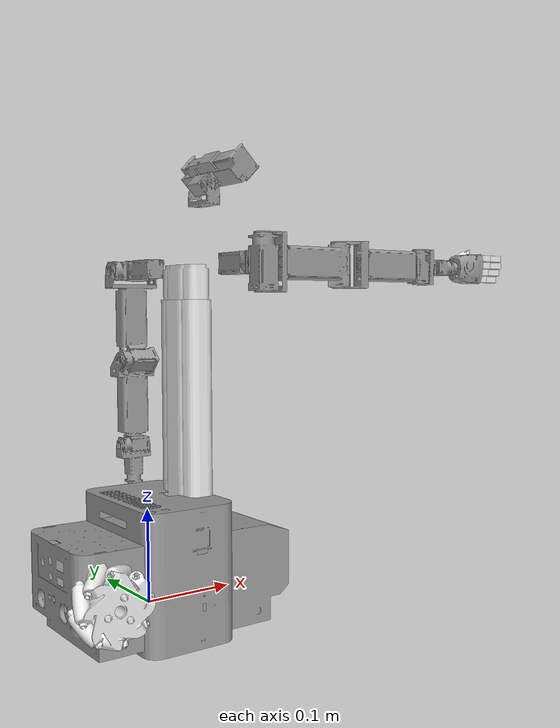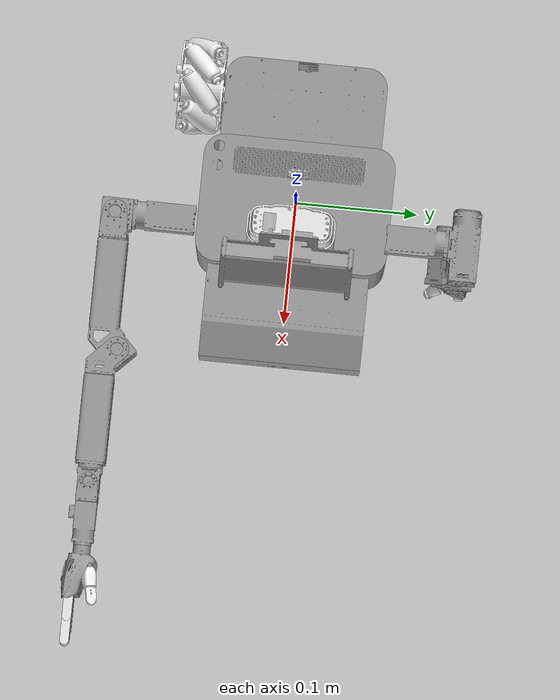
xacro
<?xml version="1.0"?>
<robot name="humic" xmlns:xacro="http://ros.org/wiki/xacro">

    <!-- Import all Gazebo-customization elements, including Gazebo colors -->
    <xacro:include filename="$(find humic_description)/urdf/humic.gazebo.xacro"/>

    <!-- Import Rviz colors -->
    <xacro:include filename="$(find humic_description)/urdf/materials.xacro"/>

    <xacro:include filename="$(find humic_description)/urdf/humic.transmission.xacro"/>

    <!-- base footprint -->
    <link name="base_footprint"/>

    <joint name="base_joint" type="fixed">
        <origin xyz="0 0 0.035" rpy="0 0 0"/>
        <parent link="base_footprint"/>
        <child link="base_link"/>
    </joint>

    <!-- Mobile-Platform Body -->
    <link name="base_link">
        <visual>
            <origin xyz="0 0 0" rpy="0 0 0"/>
            <geometry>
                <mesh filename="package://humic_description/meshes/STL/MobileBody.stl" scale="0.01 0.01 0.01"/>
            </geometry>
            <material name="grey"/>
        </visual>

        <collision>
            <origin xyz="0 0 0" rpy="0 0 0"/>
            <geometry>
                <mesh filename="package://humic_description/meshes/STL/MobileBody.stl" scale="0.01 0.01 0.01"/>
            </geometry>
        </collision>

        <inertial>
            <mass value="64.126"/>
            <inertia ixx="2.43844e+08" iyy="2.46565e+09" izz="1.39943e+09" ixy="-3.45214e+06" ixz="9.87419e+06" iyz="-2.83701e+08"/>
        </inertial>
    </link>

    <!-- Mobile-Platform Wheel -->
    <!-- front left & rear right couple-->
    <!-- front right & rear left couple-->

    <joint name="rear_left_wheel_joint" type="continuous">
        <axis xyz="0 -1 0" />
        <origin xyz="-0.085 0.085 0" rpy="0 0 0"/>
        <parent link="base_link"/>
        <child link="rear_left_wheel_link"/>
    </joint>

    <link name="rear_left_wheel_link">
        <visual>
            <origin xyz="0.085 -0.085 0" rpy="0 0 0"/>
            <geometry>
                <mesh
                    filename="package://humic_description/meshes/STL/wheel_rear_left.stl" scale="0.01 0.01 0.01"/>
            </geometry>
            <material name="white"/>
        </visual>

        <collision name="rear_left_wheel_collision">
            <origin xyz="0.085 -0.085 0" rpy="0 0 0"/>
            <geometry>
                <mesh
                    filename="package://humic_description/meshes/STL/wheel_rear_left.stl" scale="0.01 0.01 0.01"/>
            </geometry>
        </collision>

        <inertial>
            <mass value="1.414"/>
            <inertia ixx="7.14710e+07" iyy="1.35915e+08" izz="7.08597e+07" ixy="0.0" ixz="-6.59371e+07" iyz="0.0"/>
        </inertial>
    </link>

    <joint name="rear_right_wheel_joint" type="continuous">
        <axis xyz="0 1 0" />
        <origin xyz="-0.085 -0.085 0" rpy="0 0 0"/>
        <parent link="base_link"/>
        <child link="rear_right_wheel_link"/>
    </joint>

    <link name="rear_right_wheel_link">
        <visual>
            <origin xyz="0.085 0.085 0" rpy="0 0 0"/>
            <geometry>
                <mesh
                    filename="package://humic_description/meshes/STL/wheel_rear_right.stl" scale="0.01 0.01 0.01"/>
            </geometry>
            <material name="white"/>
        </visual>

        <collision name="rear_right_wheel_collision">
            <origin xyz="0.085 0.085 0" rpy="0 0 0"/>
            <geometry>
                <mesh
                    filename="package://humic_description/meshes/STL/wheel_rear_right.stl" scale="0.01 0.01 0.01"/>
            </geometry>
        </collision>

        <inertial>
            <mass value="1.662"/>
            <inertia ixx="8.39093e+07" iyy="1.59927e+08" izz="8.34746e+07" ixy="0.0" ixz="7.74594e+07" iyz="0.0"/>
        </inertial>
    </link>

    <joint name="front_right_wheel_joint" type="continuous">
        <axis xyz="0 1 0" />
        <origin xyz="0.085 0.085 0" rpy="0 0 0"/>
        <parent link="base_link"/>
        <child link="front_right_wheel_link"/>
    </joint>

    <link name="front_right_wheel_link">
        <visual>
            <origin xyz="-0.085 -0.085 0" rpy="0 0 0"/>
            <geometry>
                <mesh
                    filename="package://humic_description/meshes/STL/wheel_front_right.stl" scale="0.01 0.01 0.01"/>
            </geometry>
            <material name="white"/>
        </visual>

        <collision name="front_left_wheel_collision">
            <origin xyz="-0.085 -0.085 0" rpy="0 0 0"/>
            <geometry>
                <mesh
                    filename="package://humic_description/meshes/STL/wheel_front_right.stl" scale="0.01 0.01 0.01"/>
            </geometry>
        </collision>

        <inertial>
            <mass value="1.662"/>
            <inertia ixx="8.39093e+07" iyy="1.59927e+08" izz="8.34746e+07" ixy="0.0" ixz="7.74594e+07" iyz="0.0"/>
        </inertial>
    </link>

    <joint name="front_left_wheel_joint" type="continuous">
        <axis xyz="0 -1 0" />
        <origin xyz="0.085 -0.085 0" rpy="0 0 0"/>
        <parent link="base_link"/>
        <child link="front_left_wheel_link"/>
    </joint>

    <link name="front_left_wheel_link">
        <visual>
            <origin xyz="-0.085 0.085 0" rpy="0 0 0"/>
            <geometry>
                <mesh
                    filename="package://humic_description/meshes/STL/wheel_front_left.stl" scale="0.01 0.01 0.01"/>
            </geometry>
            <material name="white"/>
        </visual>

        <collision name="front_right_wheel_collision">
            <origin xyz="-0.085 0.085 0" rpy="0 0 0"/>
            <geometry>
                <mesh
                    filename="package://humic_description/meshes/STL/wheel_front_left.stl" scale="0.01 0.01 0.01"/>
            </geometry>
        </collision>

        <inertial>
            <mass value="1.414"/>
            <inertia ixx="7.14710e+07" iyy="1.35915e+08" izz="7.08597e+07" ixy="0.0" ixz="-6.59371e+07" iyz="0.0"/>
        </inertial>
    </link>

    <!-- Column -->
    <joint name="base_column_joint" type="fixed">
        <origin xyz="0 0 0" rpy="0 0 0"/>
        <parent link="base_link"/>
        <child link="base_column_link"/>
    </joint>

    <link name="base_column_link">
        <visual>
            <origin xyz="0 0 0" rpy="0 0 0"/>
            <geometry>
                <mesh
                    filename="package://humic_description/meshes/STL/column_base.stl" scale="0.01 0.01 0.01"/>
            </geometry>
            <material name="white"/>
        </visual>

        <collision>
            <origin xyz="0 0 0" rpy="0 0 0"/>
            <geometry>
                <mesh
                    filename="package://humic_description/meshes/STL/column_base.stl" scale="0.01 0.01 0.01"/>
            </geometry>
        </collision>

        <inertial>
            <mass value="4.797"/>
            <inertia ixx="1.01100e+09" iyy="9.45199e+07" izz="9.47275e+08" ixy="-9.00000e-03" ixz="-8.00000e-03" iyz="2.36858e+08"/>
        </inertial>
    </link>

    <joint name="inner_column_joint" type="fixed"> <!--prismatic-->
        <origin xyz="0.05 0 0.05" rpy="0 0 0"/>
        <parent link="base_column_link"/>
        <child link="inner_column_link"/>
    </joint>

    <link name="inner_column_link">
        <visual>
            <origin xyz="-0.05 0 -0.02" rpy="0 0 0"/>
            <geometry>
                <mesh
                    filename="package://humic_description/meshes/STL/column_inner.stl" scale="0.01 0.01 0.01"/>
            </geometry>
            <material name="white"/>
        </visual>

        <collision>
            <origin xyz="-0.05 0 -0.02" rpy="0 0 0"/>
            <geometry>
                <mesh
                    filename="package://humic_description/meshes/STL/column_inner.stl" scale="0.01 0.01 0.01"/>
            </geometry>
        </collision>

        <inertial>
            <mass value="2.349"/>
            <inertia ixx="6.16980e+08" iyy="4.39384e+07" izz="5.85545e+08" ixy="7.48858e+05" ixz="1.26949e+05" iyz="1.35294e+08"/>
        </inertial>
    </link>

    <!-- Torso -->
    <joint name="torso_joint" type="fixed">
        <origin xyz="0 0 0" rpy="0 0 0"/>
        <parent link="inner_column_link"/>
        <child link="torso_link"/>
    </joint>

    <link name="torso_link">
        <visual>
            <origin xyz="-0.05 0 0" rpy="0 0 0"/>
            <geometry>
                <mesh
                    filename="package://humic_description/meshes/STL/torso.stl" scale="0.01 0.01 0.01"/>
            </geometry>
            <material name="grey"/>
        </visual>

        <collision>
            <origin xyz="-0.04 0 0.19" rpy="0 0 0"/>
            <geometry>
                <box size="0.22 0.17 0.24"/>
            </geometry>
        </collision>

        <inertial>
            <mass value="18.232"/>
            <inertia ixx="7.07404e+09" iyy="7.93876e+08" izz="6.78660e+09" ixy="-5.74440e+07" ixz="-1.45790e+07" iyz="1.56352e+09"/>
        </inertial>
    </link>

    <!-- head(Pan(neck), Tile(head), Kinect V2)-->
    <joint name="torso_neck_joint" type="fixed">
        <origin xyz="0 0 0" rpy="0 0 0"/>
        <parent link="torso_link"/>
        <child link="neck_link"/>
    </joint>

    <link name="neck_link">
        <visual>
            <origin xyz="-0.05 0 0" rpy="0 0 0"/>
            <geometry>
                <mesh
                    filename="package://humic_description/meshes/STL/neck.stl" scale="0.01 0.01 0.01"/>
            </geometry>
            <material name="grey"/>
        </visual>

        <inertial>
            <mass value="0.732"/>
            <inertia ixx="4.90438e+08" iyy="2.52873e+07" izz="4.65475e+08" ixy="-4.24542e+03" ixz="-9.69919e+02" iyz="1.07698e+08"/>
        </inertial>
    </link>

    <joint name="neck_joint" type="revolute">
        <axis xyz="0 0 1" />
        <origin xyz="0.023 0 0.337" rpy="0 0 0"/>
        <limit velocity="6.5" effort="1000" lower="-0.7854" upper="0.7854" />
        <dynamics damping="0.7"/>
        <parent link="neck_link"/>
        <child link="neck_head_link"/>
    </joint>

    <link name="neck_head_link">
        <visual>
            <origin xyz="-0.073 0 -0.338" rpy="0 0 0"/>
            <geometry>
                <mesh
                    filename="package://humic_description/meshes/STL/neck_head.stl" scale="0.01 0.01 0.01"/>
            </geometry>
            <material name="grey"/>
        </visual>

        <collision>
            <origin xyz="-0.073 0 -0.338" rpy="0 0 0"/>
            <geometry>
                <mesh
                    filename="package://humic_description/meshes/STL/neck_head.stl" scale="0.01 0.01 0.01"/>
            </geometry>
        </collision>

        <inertial>
            <mass value="0.087"/>
            <inertia ixx="6.80975e+07" iyy="3.08478e+06" izz="6.52339e+07" ixy="-2.97713e+05" ixz="-6.25864e+04" iyz="1.38758e+07"/>
        </inertial>
    </link>

    <joint name="neck_head_joint" type="revolute">
        <axis xyz="0 -1 0" />
        <origin xyz="0 0 0.02" rpy="0 0.785 0"/>
        <limit velocity="6.5" effort="1000" lower="-0.7854" upper="0.7854" />
        <dynamics damping="0.7"/>
        <parent link="neck_head_link"/>
        <child link="head_kinect_link"/>
    </joint>

    <link name="head_kinect_link">
        <visual>
            <origin xyz="-0.085 0 -0.35" rpy="0 0 0"/>
            <geometry>
                <mesh
                    filename="package://humic_description/meshes/STL/head_kinect.stl" scale="0.01 0.01 0.01"/>
            </geometry>
            <material name="grey"/>
        </visual>

        <collision>
            <origin xyz="-0.085 0 -0.35" rpy="0 0 0"/>
            <geometry>
                <mesh
                    filename="package://humic_description/meshes/STL/head_kinect.stl" scale="0.01 0.01 0.01"/>
            </geometry>
        </collision>

        <inertial>
            <mass value="1.463"/>
            <inertia ixx="1.33775e+09" iyy="3.08478e+06" izz="1.27157e+09" ixy="1.06009e+06" ixz="2.26498e+05" iyz="1.38758e+07"/>
        </inertial>
    </link>

    <!-- Camera Sensor -->
    <joint name="camera_joint" type="fixed">
        <origin xyz="0 0 0" rpy="0 0 0"/>
        <parent link="head_kinect_link"/>
        <child link="camera_link"/>
    </joint>

    <link name="camera_link">
        <visual>
            <origin xyz="0.0 -0.038 0.025" rpy="0 0 0"/>
            <geometry>
                <box size="0.01 0.01 0.01"/>
            </geometry>
            <material name="white"/>
        </visual>
    </link>

    <!-- IMU Sensor -->
    <joint name="imu_joint" type="fixed">
        <origin xyz="0 0 0" rpy="0 0 0"/>
        <parent link="torso_link"/>
        <child link="imu_link"/>
    </joint>

    <link name="imu_link">
        <visual>
            <origin xyz="0.023 0.008 0.27" rpy="0 0 0"/>
            <geometry>
                <box size="0.0005 0.002 0.002"/>
            </geometry>
            <material name="white"/>
        </visual>
    </link>

    <!-- Right ARM -->
    <joint name="r_arm_body_joint" type="fixed">
        <origin xyz="0 0 0" rpy="0 0 0"/>
        <parent link="torso_link"/>
        <child link="r_shoulder_link"/>
    </joint>

    <link name="r_shoulder_link">
        <visual>
            <origin xyz="-0.05 0 0" rpy="0 0 0"/>
            <geometry>
                <mesh
                    filename="package://humic_description/meshes/STL/r_shoulder.stl" scale="0.01 0.01 0.01"/>
            </geometry>
            <material name="grey"/>
        </visual>

        <inertial>
            <mass value="0.324"/>
            <inertia ixx="1.58637e+08" iyy="2.64707e+07" izz="1.72867e+08" ixy="-5.51744e+07" ixz="-1.09893e+07" iyz="3.03653e+07"/>
        </inertial>
    </link>

    <joint name="r_shoulder_joint" type="revolute">
        <axis xyz="0 -1 0" />
        <origin xyz="0.004 -0.123 0.27" rpy="0 -1.57 0"/>
        <limit velocity="6.5" effort="1000" lower="-1.57" upper="1.57" />
        <dynamics damping="0.7"/>
        <parent link="r_shoulder_link"/>
        <child link="r_upperArm_link"/>
    </joint>

    <link name="r_upperArm_link">
        <visual>
            <origin xyz="-0.054 0.125 -0.271" rpy="0 0 0"/>
            <geometry>
                <mesh
                    filename="package://humic_description/meshes/STL/r_upperArm.stl" scale="0.01 0.01 0.01"/>
            </geometry>
            <material name="grey"/>
        </visual>

        <collision>
            <origin xyz="-0.054 0.125 -0.271" rpy="0 0 0"/>
            <geometry>
                <mesh
                    filename="package://humic_description/meshes/STL/r_upperArm.stl" scale="0.01 0.01 0.01"/>
            </geometry>
        </collision>

        <inertial>
            <mass value="0.353"/>
            <inertia ixx="1.73491e+08" iyy="4.90592e+07" izz="2.08142e+08" ixy="-8.33193e+07" ixz="-1.67769e+07" iyz="3.34583e+07"/>
        </inertial>
    </link>

    <joint name="r_upperArm_joint" type="revolute">
        <axis xyz="1 0 0" />
        <origin xyz="0 -0.011 0" rpy="0 0 0"/>
        <limit velocity="6.5" effort="1000" lower="-1.57" upper="0.0" />
        <dynamics damping="0.7"/>
        <parent link="r_upperArm_link"/>
        <child link="r_elbow_link"/>
    </joint>

    <link name="r_elbow_link">
        <visual>
            <origin xyz="-0.054 0.136 -0.271" rpy="0 0 0"/>
            <geometry>
                <mesh
                    filename="package://humic_description/meshes/STL/r_elbow.stl" scale="0.01 0.01 0.01"/>
            </geometry>
            <material name="grey"/>
        </visual>

        <collision>
            <origin xyz="-0.054 0.136 -0.271" rpy="0 0 0"/>
            <geometry>
                <mesh
                    filename="package://humic_description/meshes/STL/r_elbow.stl" scale="0.01 0.01 0.01"/>
            </geometry>
        </collision>

        <inertial>
            <mass value="0.529"/>
            <inertia ixx="1.38870e+08" iyy="6.80593e+07" izz="1.85969e+08" ixy="-8.50240e+07" ixz="-2.38516e+07" iyz="3.52215e+07"/>
        </inertial>
    </link>

    <joint name="r_elbow_joint" type="revolute">
        <axis xyz="1 0 0" />
        <origin xyz="0 0.011 -0.105" rpy="0 0 0"/>
        <limit velocity="6.5" effort="1000" lower="0" upper="0.52" />
        <dynamics damping="0.7"/>
        <parent link="r_elbow_link"/>
        <child link="r_foreArm_link"/>
    </joint>

    <link name="r_foreArm_link">
        <visual>
            <origin xyz="-0.054 0.125 -0.166" rpy="0 0 0"/>
            <geometry>
                <mesh
                    filename="package://humic_description/meshes/STL/r_foreArm.stl" scale="0.01 0.01 0.01"/>
            </geometry>
            <material name="grey"/>
        </visual>

        <collision>
            <origin xyz="-0.054 0.125 -0.166" rpy="0 0 0"/>
            <geometry>
                <mesh
                    filename="package://humic_description/meshes/STL/r_foreArm.stl" scale="0.01 0.01 0.01"/>
            </geometry>
        </collision>

        <inertial>
            <mass value="0.501"/>
            <inertia ixx="5.38306e+07" iyy="6.94958e+07" izz="1.03905e+08" ixy="-5.05255e+07" ixz="-2.36971e+07" iyz="2.00992e+07"/>
        </inertial>
    </link>

    <joint name="r_foreArm_joint" type="revolute">
        <axis xyz="0 0 -1" />
        <origin xyz="0 -0.011 -0.090" rpy="0 0 0"/>
        <limit velocity="6.5" effort="1000" lower="-1.57" upper="1.57" />
        <dynamics damping="0.7"/>
        <parent link="r_foreArm_link"/>
        <child link="r_lowerArm_link"/>
    </joint>

    <link name="r_lowerArm_link">
        <visual>
            <origin xyz="-0.054 0.136 -0.076" rpy="0 0 0"/>
            <geometry>
                <mesh
                    filename="package://humic_description/meshes/STL/r_lowerArm.stl" scale="0.01 0.01 0.01"/>
            </geometry>
            <material name="grey"/>
        </visual>

        <collision>
            <origin xyz="-0.054 0.136 -0.076" rpy="0 0 0"/>
            <geometry>
                <mesh
                    filename="package://humic_description/meshes/STL/r_lowerArm.stl" scale="0.01 0.01 0.01"/>
            </geometry>
        </collision>

        <inertial>
            <mass value="0.144"/>
            <inertia ixx="6.68413e+06" iyy="1.98639e+07" izz="2.10626e+07" ixy="-8.18631e+06" ixz="-6.74644e+06" iyz="3.22949e+06"/>
        </inertial>
    </link>

    <joint name="r_lowerArm_joint" type="revolute">
        <axis xyz="1 0 0" />
        <origin xyz="0 0 -0.012" rpy="0 0 0"/>
        <limit velocity="6.5" effort="1000" lower="-1.57" upper="1.57" />
        <dynamics damping="0.7"/>
        <parent link="r_lowerArm_link"/>
        <child link="r_wrist_link"/>
    </joint>

    <link name="r_wrist_link">
        <visual>
            <origin xyz="-0.054 0.136 -0.064" rpy="0 0 0"/>
            <geometry>
                <mesh
                    filename="package://humic_description/meshes/STL/r_wrist.stl" scale="0.01 0.01 0.01"/>
            </geometry>
            <material name="grey"/>
        </visual>

        <collision>
            <origin xyz="-0.054 0.136 -0.064" rpy="0 0 0"/>
            <geometry>
                <mesh
                    filename="package://humic_description/meshes/STL/r_wrist.stl" scale="0.01 0.01 0.01"/>
            </geometry>
        </collision>

        <inertial>
            <mass value="0.163"/>
            <inertia ixx="4.76597e+06" iyy="2.26942e+07" izz="2.11061e+07" ixy="-5.33281e+06" ixz="-7.80384e+06" iyz="2.14027e+06"/>
        </inertial>
    </link>

    <joint name="r_wrist_joint" type="revolute">
        <axis xyz="0 0 -1" />
        <origin xyz="0 0 -0.048" rpy="0 0 0"/>
        <limit velocity="6.5" effort="1000" lower="-1.57" upper="1.57" />
        <dynamics damping="0.7"/>
        <parent link="r_wrist_link"/>
        <child link="r_hand_link"/>
    </joint>

    <link name="r_hand_link">
        <visual>
            <origin xyz="-0.054 0.136 -0.015" rpy="0 0 0"/>
            <geometry>
                <mesh
                    filename="package://humic_description/meshes/STL/r_hand.stl" scale="0.01 0.01 0.01"/>
            </geometry>
            <material name="grey"/>
        </visual>

        <collision>
            <origin xyz="-0.054 0.136 -0.015" rpy="0 0 0"/>
            <geometry>
                <mesh
                    filename="package://humic_description/meshes/STL/r_hand.stl" scale="0.01 0.01 0.01"/>
            </geometry>
        </collision>

        <inertial>
            <mass value="0.072"/>
            <inertia ixx="1.38325e+06" iyy="9.65946e+06" izz="8.41135e+06" ixy="7.83401e+04" ixz="-3.27407e+06" iyz="-2.39035e+04"/>
        </inertial>
    </link>

    <joint name="r_hand_joint" type="fixed">
        <origin xyz="0 0 0" rpy="0 0 0"/>
        <parent link="r_hand_link"/>
        <child link="r_finger_link"/>
    </joint>

    <link name="r_finger_link">
        <inertial>
            <mass value="0.005"/>
            <inertia ixx="0.001" iyy="0.001" izz="0.001" ixy="0.0" ixz="0.0" iyz="0.0"/>
        </inertial>
    </link>

    <joint name="r_finger1_1_joint" type="revolute">
        <axis xyz="1 0 0" />
        <origin xyz="0.012 -0.006 -0.036" rpy="0 0 0"/>
        <limit velocity="5" effort="1" lower="0" upper="1.57" />
        <dynamics damping="0.7"/>
        <parent link="r_finger_link"/>
        <child link="r_finger1_1_link"/>
    </joint>

    <link name="r_finger1_1_link">
        <visual>
            <origin xyz="-0.066 0.14 0.0255" rpy="0 0 0"/>
            <geometry>
                <mesh
                    filename="package://humic_description/meshes/STL/r_finger1_1.stl" scale="0.01 0.01 0.01"/>
            </geometry>
            <material name="white"/>
        </visual>

        <collision>
            <origin xyz="-0.066 0.14 0.0255" rpy="0 0 0"/>
            <geometry>
                <mesh
                    filename="package://humic_description/meshes/STL/r_finger1_1.stl" scale="0.01 0.01 0.01"/>
            </geometry>
        </collision>

        <inertial>
            <mass value="0.054"/>
            <inertia ixx="2.00226e+06" iyy="8.34899e+06" izz="7.29389e+06" ixy="1.76606e+06" ixz="-3.22704e+06" iyz="-8.35818e+05"/>
        </inertial>
    </link>

    <joint name="r_finger1_2_joint" type="revolute">
        <axis xyz="1 0 0" />
        <origin xyz="0 0 -0.02" rpy="0 0 0"/>
        <limit velocity="5" effort="1" lower="0" upper="1.57" />
        <dynamics damping="0.7"/>
        <parent link="r_finger1_1_link"/>
        <child link="r_finger1_2_link"/>
    </joint>

    <link name="r_finger1_2_link">
        <visual>
            <origin xyz="-0.066 0.14 0.045" rpy="0 0 0"/>
            <geometry>
                <mesh
                    filename="package://humic_description/meshes/STL/r_finger1_2.stl" scale="0.01 0.01 0.01"/>
            </geometry>
            <material name="white"/>
        </visual>

        <collision>
            <origin xyz="-0.066 0.14 0.045" rpy="0 0 0"/>
            <geometry>
                <mesh
                    filename="package://humic_description/meshes/STL/r_finger1_2.stl" scale="0.01 0.01 0.01"/>
            </geometry>
        </collision>

        <inertial>
            <mass value="0.050"/>
            <inertia ixx="2.35967e+06" iyy="7.74258e+06" izz="7.26480e+06" ixy="2.42117e+06" ixz="-2.99356e+06" iyz="-1.14637e+06"/>
        </inertial>
    </link>

    <joint name="r_finger2_1_joint" type="revolute">
        <axis xyz="1 0 0" />
        <origin xyz="0.004 -0.006 -0.036" rpy="0 0 0"/>
        <limit velocity="5" effort="1" lower="0" upper="1.57" />
        <dynamics damping="0.7"/>
        <parent link="r_finger_link"/>
        <child link="r_finger2_1_link"/>
    </joint>

    <link name="r_finger2_1_link">
        <visual>
            <origin xyz="-0.058 0.14 0.0255" rpy="0 0 0"/>
            <geometry>
                <mesh
                    filename="package://humic_description/meshes/STL/r_finger2_1.stl" scale="0.01 0.01 0.01"/>
            </geometry>
            <material name="white"/>
        </visual>

        <collision>
            <origin xyz="-0.058 0.14 0.0255" rpy="0 0 0"/>
            <geometry>
                <mesh
                    filename="package://humic_description/meshes/STL/r_finger2_1.stl" scale="0.01 0.01 0.01"/>
            </geometry>
        </collision>

        <inertial>
            <mass value="0.054"/>
            <inertia ixx="1.66064e+06" iyy="8.00703e+06" izz="7.29424e+06" ixy="1.76673e+06" ixz="-2.84288e+06" iyz="-7.36602e+05"/>
        </inertial>
    </link>

    <joint name="r_finger2_2_joint" type="revolute">
        <axis xyz="1 0 0" />
        <origin xyz="0 0 -0.021" rpy="0 0 0"/>
        <limit velocity="5" effort="1" lower="0" upper="1.57" />
        <dynamics damping="0.7"/>
        <parent link="r_finger2_1_link"/>
        <child link="r_finger2_2_link"/>
    </joint>

    <link name="r_finger2_2_link">
        <visual>
            <origin xyz="-0.058 0.14 0.045" rpy="0 0 0"/>
            <geometry>
                <mesh
                    filename="package://humic_description/meshes/STL/r_finger2_2.stl" scale="0.01 0.01 0.01"/>
            </geometry>
            <material name="white"/>
        </visual>

        <collision>
            <origin xyz="-0.058 0.14 0.045" rpy="0 0 0"/>
            <geometry>
                <mesh
                    filename="package://humic_description/meshes/STL/r_finger2_2.stl" scale="0.01 0.01 0.01"/>
            </geometry>
        </collision>

        <inertial>
            <mass value="0.050"/>
            <inertia ixx="2.04291e+06" iyy="7.42535e+06" izz="7.26528e+06" ixy="2.42180e+06" ixz="-2.63735e+06" iyz="-1.01023e+06"/>
        </inertial>
    </link>

    <joint name="r_finger3_1_joint" type="revolute">
        <axis xyz="1 0 0" />
        <origin xyz="-0.004 -0.006 -0.036" rpy="0 0 0"/>
        <limit velocity="5" effort="1" lower="0" upper="1.57" />
        <dynamics damping="0.7"/>
        <parent link="r_finger_link"/>
        <child link="r_finger3_1_link"/>
    </joint>

    <link name="r_finger3_1_link">
        <visual>
            <origin xyz="-0.05 0.14 0.0255" rpy="0 0 0"/>
            <geometry>
                <mesh
                    filename="package://humic_description/meshes/STL/r_finger3_1.stl" scale="0.01 0.01 0.01"/>
            </geometry>
            <material name="white"/>
        </visual>

        <collision>
            <origin xyz="-0.05 0.14 0.0255" rpy="0 0 0"/>
            <geometry>
                <mesh
                    filename="package://humic_description/meshes/STL/r_finger3_1.stl" scale="0.01 0.01 0.01"/>
            </geometry>
        </collision>

        <inertial>
            <mass value="0.047"/>
            <inertia ixx="1.14431e+06" iyy="6.66013e+06" izz="6.27001e+06" ixy="1.46901e+06" ixz="-2.12432e+06" iyz="-5.29681e+05"/>
        </inertial>
    </link>

    <joint name="r_finger3_2_joint" type="revolute">
        <axis xyz="1 0 0" />
        <origin xyz="0 0 -0.017" rpy="0 0 0"/>
        <limit velocity="5" effort="1" lower="0" upper="1.57" />
        <dynamics damping="0.7"/>
        <parent link="r_finger3_1_link"/>
        <child link="r_finger3_2_link"/>
    </joint>

    <link name="r_finger3_2_link">
        <visual>
            <origin xyz="-0.05 0.14 0.041" rpy="0 0 0"/>
            <geometry>
                <mesh
                    filename="package://humic_description/meshes/STL/r_finger3_2.stl" scale="0.01 0.01 0.01"/>
            </geometry>
            <material name="white"/>
        </visual>

        <collision>
            <origin xyz="-0.05 0.14 0.041" rpy="0 0 0"/>
            <geometry>
                <mesh
                    filename="package://humic_description/meshes/STL/r_finger3_2.stl" scale="0.01 0.01 0.01"/>
            </geometry>
        </collision>

        <inertial>
            <mass value="0.049"/>
            <inertia ixx="1.63689e+06" iyy="7.02269e+06" izz="7.04004e+06" ixy="2.24869e+06" ixz="-2.24091e+06" iyz="-8.11249e+05"/>
        </inertial>
    </link>

    <joint name="r_finger4_1_joint" type="revolute">
        <axis xyz="1 0 0" />
        <origin xyz="-0.012 -0.006 -0.036" rpy="0 0 0"/>
        <limit velocity="5" effort="1" lower="0" upper="1.57" />
        <dynamics damping="0.7"/>
        <parent link="r_finger_link"/>
        <child link="r_finger4_1_link"/>
    </joint>

    <link name="r_finger4_1_link">
        <visual>
            <origin xyz="-0.042 0.14 0.0255" rpy="0 0 0"/>
            <geometry>
                <mesh
                    filename="package://humic_description/meshes/STL/r_finger4_1.stl" scale="0.01 0.01 0.01"/>
            </geometry>
            <material name="white"/>
        </visual>

        <collision>
            <origin xyz="-0.042 0.14 0.0255" rpy="0 0 0"/>
            <geometry>
                <mesh
                    filename="package://humic_description/meshes/STL/r_finger4_1.stl" scale="0.01 0.01 0.01"/>
            </geometry>
        </collision>

        <inertial>
            <mass value="0.040"/>
            <inertia ixx="7.58548e+05" iyy="5.51043e+06" izz="5.33369e+06" ixy="1.19722e+06" ixz="-1.53370e+06" iyz="-3.64204e+05"/>
        </inertial>
    </link>

    <joint name="r_finger4_2_joint" type="revolute">
        <axis xyz="1 0 0" />
        <origin xyz="0 0 -0.015" rpy="0 0 0"/>
        <limit velocity="5" effort="1" lower="0" upper="1.57" />
        <dynamics damping="0.7"/>
        <parent link="r_finger4_1_link"/>
        <child link="r_finger4_2_link"/>
    </joint>

    <link name="r_finger4_2_link">
        <visual>
            <origin xyz="-0.042 0.14 0.039" rpy="0 0 0"/>
            <geometry>
                <mesh
                    filename="package://humic_description/meshes/STL/r_finger4_2.stl" scale="0.01 0.01 0.01"/>
            </geometry>
            <material name="white"/>
        </visual>

        <collision>
            <origin xyz="-0.042 0.14 0.039" rpy="0 0 0"/>
            <geometry>
                <mesh
                    filename="package://humic_description/meshes/STL/r_finger4_2.stl" scale="0.01 0.01 0.01"/>
            </geometry>
        </collision>

        <inertial>
            <mass value="0.047"/>
            <inertia ixx="1.20559e+06" iyy="6.45087e+06" izz="6.56048e+06" ixy="1.95416e+06" ixz="-1.79625e+06" iyz="-5.94794e+05"/>
        </inertial>
    </link>

    <joint name="r_thumb_joint" type="revolute">
        <axis xyz="0 0 -1" />
        <origin xyz="0.005 0.008 -0.020" rpy="0 0 -0.785"/>
        <limit velocity="5" effort="1" lower="0" upper="0.785" />
        <dynamics damping="0.7"/>
        <parent link="r_finger_link"/>
        <child link="r_thumb_link"/>
    </joint>

    <link name="r_thumb_link">
        <visual>
            <origin xyz="-0.057 0.126 0.005" rpy="0 0 0"/>
            <geometry>
                <mesh
                    filename="package://humic_description/meshes/STL/r_thumb.stl" scale="0.01 0.01 0.01"/>
            </geometry>
            <material name="white"/>
        </visual>

        <collision>
            <origin xyz="-0.057 0.126 0.005" rpy="0 0 0"/>
            <geometry>
                <mesh
                    filename="package://humic_description/meshes/STL/r_thumb.stl" scale="0.01 0.01 0.01"/>
            </geometry>
        </collision>

        <inertial>
            <mass value="0.063"/>
            <inertia ixx="1.64286e+06" iyy="7.40185e+06" izz="5.91536e+06" ixy="5.87329e+05" ixz="-3.01472e+06" iyz="-3.10704e+05"/>
        </inertial>
    </link>

    <!-- Left ARM -->
    <joint name="l_arm_body_joint" type="fixed">
        <parent link="torso_link"/>
        <child link="l_shoulder_link"/>
    </joint>

    <link name="l_shoulder_link">
        <visual>
            <origin xyz="-0.05 0 0" rpy="0 0 0"/>
            <geometry>
                <mesh
                    filename="package://humic_description/meshes/STL/l_shoulder.stl" scale="0.01 0.01 0.01"/>
            </geometry>
            <material name="grey"/>
        </visual>

        <inertial>
            <mass value="0.324"/>
            <inertia ixx="1.58637e+08" iyy="2.64707e+07" izz="1.72867e+08" ixy="5.51744e+07" ixz="1.09893e+07" iyz="3.03653e+07"/>
        </inertial>
    </link>

    <joint name="l_shoulder_joint" type="revolute">
        <axis xyz="0 -1 0" />
        <origin xyz="0.004 0.123 0.27" rpy="0 0 0"/>
        <limit velocity="6.5" effort="1000" lower="-3.14" upper="3.14" />
        <dynamics damping="0.7"/>
        <parent link="l_shoulder_link"/>
        <child link="l_upperArm_link"/>
    </joint>

    <link name="l_upperArm_link">
        <visual>
            <origin xyz="-0.054 -0.125 -0.271" rpy="0 0 0"/>
            <geometry>
                <mesh
                    filename="package://humic_description/meshes/STL/l_upperArm.stl" scale="0.01 0.01 0.01"/>
            </geometry>
            <material name="grey"/>
        </visual>

        <collision>
            <origin xyz="-0.054 -0.125 -0.271" rpy="0 0 0"/>
            <geometry>
                <mesh
                    filename="package://humic_description/meshes/STL/l_upperArm.stl" scale="0.01 0.01 0.01"/>
            </geometry>
        </collision>

        <inertial>
            <mass value="0.353"/>
            <inertia ixx="1.73201e+08" iyy="4.87701e+07" izz="2.08141e+08" ixy="8.33190e+07" ixz="1.64043e+07" iyz="3.27317e+07"/>
        </inertial>
    </link>

    <joint name="l_upperArm_joint" type="revolute">
        <axis xyz="-1 0 0" />
        <origin xyz="0 0.011 0" rpy="0 0 0"/>
        <limit velocity="6.5" effort="1000" lower="-1.57" upper="1.57" />
        <dynamics damping="0.7"/>
        <parent link="l_upperArm_link"/>
        <child link="l_elbow_link"/>
    </joint>

    <link name="l_elbow_link">
        <visual>
            <origin xyz="-0.054 -0.136 -0.271" rpy="0 0 0"/>
            <geometry>
                <mesh
                    filename="package://humic_description/meshes/STL/l_elbow.stl" scale="0.01 0.01 0.01"/>
            </geometry>
            <material name="grey"/>
        </visual>

        <collision>
            <origin xyz="-0.054 -0.136 -0.271" rpy="0 0 0"/>
            <geometry>
                <mesh
                    filename="package://humic_description/meshes/STL/l_elbow.stl" scale="0.01 0.01 0.01"/>
            </geometry>
        </collision>

        <inertial>
            <mass value="0.529"/>
            <inertia ixx="1.38809e+08" iyy="6.79988e+07" izz="1.85969e+08" ixy="8.50239e+07" ixz="2.37845e+07" iyz="3.50234e+07"/>
        </inertial>
    </link>

    <joint name="l_elbow_joint" type="revolute">
        <axis xyz="-1 0 0" />
        <origin xyz="0 -0.011 -0.105" rpy="0 0 0"/>
        <limit velocity="6.5" effort="1000" lower="-1.397" upper="0" />
        <dynamics damping="0.7"/>
        <parent link="l_elbow_link"/>
        <child link="l_foreArm_link"/>
    </joint>

    <link name="l_foreArm_link">
        <visual>
            <origin xyz="-0.054 -0.125 -0.166" rpy="0 0 0"/>
            <geometry>
                <mesh
                    filename="package://humic_description/meshes/STL/l_foreArm.stl" scale="0.01 0.01 0.01"/>
            </geometry>
            <material name="grey"/>
        </visual>

        <collision>
            <origin xyz="-0.054 -0.125 -0.166" rpy="0 0 0"/>
            <geometry>
                <mesh
                    filename="package://humic_description/meshes/STL/l_foreArm.stl" scale="0.01 0.01 0.01"/>
            </geometry>
        </collision>

        <inertial>
            <mass value="0.501"/>
            <inertia ixx="5.37910e+07" iyy="6.94563e+07" izz="1.03905e+08" ixy="5.05255e+07" ixz="2.36541e+07" iyz="2.00295e+07"/>
        </inertial>
    </link>

    <joint name="l_foreArm_joint" type="revolute">
        <axis xyz="0 0 -1" />
        <origin xyz="0 0.011 -0.090" rpy="0 0 0"/>
        <limit velocity="6.5" effort="1000" lower="-1.57" upper="1.57" />
        <dynamics damping="0.7"/>
        <parent link="l_foreArm_link"/>
        <child link="l_lowerArm_link"/>
    </joint>

    <link name="l_lowerArm_link">
        <visual>
            <origin xyz="-0.054 -0.136 -0.076" rpy="0 0 0"/>
            <geometry>
                <mesh
                    filename="package://humic_description/meshes/STL/l_lowerArm.stl" scale="0.01 0.01 0.01"/>
            </geometry>
            <material name="grey"/>
        </visual>

        <collision>
            <origin xyz="-0.054 -0.136 -0.076" rpy="0 0 0"/>
            <geometry>
                <mesh
                    filename="package://humic_description/meshes/STL/l_lowerArm.stl" scale="0.01 0.01 0.01"/>
            </geometry>
        </collision>

        <inertial>
            <mass value="0.144"/>
            <inertia ixx="6.75832e+06" iyy="1.99380e+07" izz="2.10627e+07" ixy="8.18639e+06" ixz="6.83971e+06" iyz="3.27467e+06"/>
        </inertial>
    </link>

    <joint name="l_lowerArm_joint" type="revolute">
        <axis xyz="-1 0 0" />
        <origin xyz="0 0 -0.012" rpy="0 0 0"/>
        <limit velocity="6.5" effort="1000" lower="-1.57" upper="1.57" />
        <dynamics damping="0.7"/>
        <parent link="l_lowerArm_link"/>
        <child link="l_wrist_link"/>
    </joint>

    <link name="l_wrist_link">
        <visual>
            <origin xyz="-0.054 -0.136 -0.064" rpy="0 0 0"/>
            <geometry>
                <mesh
                    filename="package://humic_description/meshes/STL/l_wrist.stl" scale="0.01 0.01 0.01"/>
            </geometry>
            <material name="grey"/>
        </visual>

        <collision>
            <origin xyz="-0.054 -0.136 -0.064" rpy="0 0 0"/>
            <geometry>
                <mesh
                    filename="package://humic_description/meshes/STL/l_wrist.stl" scale="0.01 0.01 0.01"/>
            </geometry>
        </collision>

        <inertial>
            <mass value="0.163"/>
            <inertia ixx="4.65423e+06" iyy="2.25825e+07" izz="2.11060e+07" ixy="5.33269e+06" ixz="7.66325e+06" iyz="2.09064e+06"/>
        </inertial>
    </link>

    <joint name="l_wrist_joint" type="revolute">
        <axis xyz="0 0 -1" />
        <origin xyz="0 0 -0.048" rpy="0 0 0"/>
        <limit velocity="6.5" effort="1000" lower="-1.57" upper="1.57" />
        <dynamics damping="0.7"/>
        <parent link="l_wrist_link"/>
        <child link="l_hand_link"/>
    </joint>

    <link name="l_hand_link">
        <visual>
            <origin xyz="-0.054 -0.136 -0.015" rpy="0 0 0"/>
            <geometry>
                <mesh
                    filename="package://humic_description/meshes/STL/l_hand.stl" scale="0.01 0.01 0.01"/>
            </geometry>
            <material name="grey"/>
        </visual>

        <collision>
            <origin xyz="-0.054 -0.136 -0.015" rpy="0 0 0"/>
            <geometry>
                <mesh
                    filename="package://humic_description/meshes/STL/l_hand.stl" scale="0.01 0.01 0.01"/>
            </geometry>
        </collision>

        <inertial>
            <mass value="0.072"/>
            <inertia ixx="1.36468e+06" iyy="9.64090e+06" izz="8.41131e+06" ixy="-7.81787e+04" ixz="3.25059e+06" iyz="-2.37841e+04"/>
        </inertial>
    </link>

    <joint name="l_hand_joint" type="fixed">
        <origin xyz="0 0 0" rpy="0 0 0"/>
        <parent link="l_hand_link"/>
        <child link="l_finger_link"/>
    </joint>

    <link name="l_finger_link">
        <inertial>
            <mass value="0.005"/>
            <inertia ixx="0.001" iyy="0.001" izz="0.001" ixy="0.0" ixz="0.0" iyz="0.0"/>
        </inertial>
    </link>

    <joint name="l_finger1_1_joint" type="revolute">
        <axis xyz="-1 0 0" />
        <origin xyz="0.012 0.006 -0.036" rpy="0 0 0"/>
        <limit velocity="5" effort="1" lower="0" upper="0.5" />
        <dynamics damping="0.7" friction="0"/>
        <parent link="l_finger_link"/>
        <child link="l_finger1_1_link"/>
    </joint>

    <link name="l_finger1_1_link">
        <visual>
            <origin xyz="-0.066 -0.14 0.0255" rpy="0 0 0"/>
            <geometry>
                <mesh
                    filename="package://humic_description/meshes/STL/l_finger1_1.stl" scale="0.01 0.01 0.01"/>
            </geometry>
            <material name="white"/>
        </visual>

        <collision>
            <origin xyz="-0.066 -0.14 0.0255" rpy="0 0 0"/>
            <geometry>
                <mesh
                    filename="package://humic_description/meshes/STL/l_finger1_1.stl" scale="0.01 0.01 0.01"/>
            </geometry>
        </collision>

        <inertial>
            <mass value="0.054"/>
            <inertia ixx="1.97821e+06" iyy="8.32441e+06" izz="7.29442e+06" ixy="-1.76709e+06" ixz="3.20096e+06" iyz="-8.29521e+05"/>
        </inertial>
    </link>

    <joint name="l_finger1_2_joint" type="revolute">
        <axis xyz="-1 0 0" />
        <origin xyz="0 0 -0.02" rpy="0 0 0"/>
        <limit velocity="5" effort="1" lower="0" upper="0.5" />
        <dynamics damping="0.7" friction="0"/>
        <parent link="l_finger1_1_link"/>
        <child link="l_finger1_2_link"/>
    </joint>

    <link name="l_finger1_2_link">
        <visual>
            <origin xyz="-0.066 -0.14 0.045" rpy="0 0 0"/>
            <geometry>
                <mesh
                    filename="package://humic_description/meshes/STL/l_finger1_2.stl" scale="0.01 0.01 0.01"/>
            </geometry>
            <material name="white"/>
        </visual>

        <collision>
            <origin xyz="-0.066 -0.14 0.045" rpy="0 0 0"/>
            <geometry>
                <mesh
                    filename="package://humic_description/meshes/STL/l_finger1_2.stl" scale="0.01 0.01 0.01"/>
            </geometry>
        </collision>

        <inertial>
            <mass value="0.050"/>
            <inertia ixx="2.33631e+06" iyy="7.71849e+06" izz="7.26553e+06" ixy="-2.42213e+06" ixz="2.96800e+06" iyz="-1.13701e+06"/>
        </inertial>
    </link>

    <joint name="l_finger2_1_joint" type="revolute">
        <axis xyz="-1 0 0" />
        <origin xyz="0.004 0.006 -0.036" rpy="0 0 0"/>
        <limit velocity="5" effort="1" lower="0" upper="0.5" />
        <dynamics damping="0.7" friction="0"/>
        <parent link="l_finger_link"/>
        <child link="l_finger2_1_link"/>
    </joint>

    <link name="l_finger2_1_link">
        <visual>
            <origin xyz="-0.058 -0.14 0.0255" rpy="0 0 0"/>
            <geometry>
                <mesh
                    filename="package://humic_description/meshes/STL/l_finger2_1.stl" scale="0.01 0.01 0.01"/>
            </geometry>
            <material name="white"/>
        </visual>

        <collision>
            <origin xyz="-0.058 -0.14 0.0255" rpy="0 0 0"/>
            <geometry>
                <mesh
                    filename="package://humic_description/meshes/STL/l_finger2_1.stl" scale="0.01 0.01 0.01"/>
            </geometry>
        </collision>

        <inertial>
            <mass value="0.054"/>
            <inertia ixx="1.63918e+06" iyy="7.98538e+06" izz="7.29442e+06" ixy="-1.76709e+06" ixz="2.81680e+06" iyz="-7.29967e+05"/>
        </inertial>
    </link>

    <joint name="l_finger2_2_joint" type="revolute">
        <axis xyz="-1 0 0" />
        <origin xyz="0 0 -0.021" rpy="0 0 0"/>
        <limit velocity="5" effort="1" lower="0" upper="0.5" />
        <dynamics damping="0.7" friction="0"/>
        <parent link="l_finger2_1_link"/>
        <child link="l_finger2_2_link"/>
    </joint>

    <link name="l_finger2_2_link">
        <visual>
            <origin xyz="-0.058 -0.14 0.045" rpy="0 0 0"/>
            <geometry>
                <mesh
                    filename="package://humic_description/meshes/STL/l_finger2_2.stl" scale="0.01 0.01 0.01"/>
            </geometry>
            <material name="white"/>
        </visual>

        <collision>
            <origin xyz="-0.058 -0.14 0.045" rpy="0 0 0"/>
            <geometry>
                <mesh
                    filename="package://humic_description/meshes/STL/l_finger2_2.stl" scale="0.01 0.01 0.01"/>
            </geometry>
        </collision>

        <inertial>
            <mass value="0.050"/>
            <inertia ixx="2.02195e+06" iyy="7.40414e+06" izz="7.26553e+06" ixy="-2.42213e+06" ixz="2.61180e+06" iyz="-1.00056e+06"/>
        </inertial>
    </link>

    <joint name="l_finger3_1_joint" type="revolute">
        <axis xyz="-1 0 0" />
        <origin xyz="-0.004 0.006 -0.036" rpy="0 0 0"/>
        <limit velocity="5" effort="1" lower="0" upper="0.5" />
        <dynamics damping="0.7" friction="0"/>
        <parent link="l_finger_link"/>
        <child link="l_finger3_1_link"/>
    </joint>

    <link name="l_finger3_1_link">
        <visual>
            <origin xyz="-0.05 -0.14 0.0255" rpy="0 0 0"/>
            <geometry>
                <mesh
                    filename="package://humic_description/meshes/STL/l_finger3_1.stl" scale="0.01 0.01 0.01"/>
            </geometry>
            <material name="white"/>
        </visual>

        <collision>
            <origin xyz="-0.05 -0.14 0.0255" rpy="0 0 0"/>
            <geometry>
                <mesh
                    filename="package://humic_description/meshes/STL/l_finger3_1.stl" scale="0.01 0.01 0.01"/>
            </geometry>
        </collision>

        <inertial>
            <mass value="0.047"/>
            <inertia ixx="1.12808e+06" iyy="6.64404e+06" izz="6.26987e+06" ixy="-1.46874e+06" ixz="2.10188e+06" iyz="-5.23975e+05"/>
        </inertial>
    </link>

    <joint name="l_finger3_2_joint" type="revolute">
        <axis xyz="-1 0 0" />
        <origin xyz="0 0 -0.017" rpy="0 0 0"/>
        <limit velocity="5" effort="1" lower="0" upper="0.5" />
        <dynamics damping="0.7" friction="0"/>
        <parent link="l_finger3_1_link"/>
        <child link="l_finger3_2_link"/>
    </joint>

    <link name="l_finger3_2_link">
        <visual>
            <origin xyz="-0.05 -0.14 0.041" rpy="0 0 0"/>
            <geometry>
                <mesh
                    filename="package://humic_description/meshes/STL/l_finger3_2.stl" scale="0.01 0.01 0.01"/>
            </geometry>
            <material name="white"/>
        </visual>

        <collision>
            <origin xyz="-0.05 -0.14 0.041" rpy="0 0 0"/>
            <geometry>
                <mesh
                    filename="package://humic_description/meshes/STL/l_finger3_2.stl" scale="0.01 0.01 0.01"/>
            </geometry>
        </collision>

        <inertial>
            <mass value="0.049"/>
            <inertia ixx="1.61883e+06" iyy="7.00484e+06" izz="7.03984e+06" ixy="-2.24841e+06" ixz="2.21603e+06" iyz="-8.02133e+05"/>
        </inertial>
    </link>

    <joint name="l_finger4_1_joint" type="revolute">
        <axis xyz="-1 0 0" />
        <origin xyz="-0.012 0.006 -0.036" rpy="0 0 0"/>
        <limit velocity="5" effort="1" lower="0" upper="0.5" />
        <dynamics damping="0.7" friction="0"/>
        <parent link="l_finger_link"/>
        <child link="l_finger4_1_link"/>
    </joint>

    <link name="l_finger4_1_link">
        <visual>
            <origin xyz="-0.042 -0.14 0.0255" rpy="0 0 0"/>
            <geometry>
                <mesh
                    filename="package://humic_description/meshes/STL/l_finger4_1.stl" scale="0.01 0.01 0.01"/>
            </geometry>
            <material name="white"/>
        </visual>

        <collision>
            <origin xyz="-0.042 -0.14 0.0255" rpy="0 0 0"/>
            <geometry>
                <mesh
                    filename="package://humic_description/meshes/STL/l_finger4_1.stl" scale="0.01 0.01 0.01"/>
            </geometry>
        </collision>

        <inertial>
            <mass value="0.040"/>
            <inertia ixx="7.46660e+05" iyy="5.49889e+06" izz="5.33334e+06" ixy="-1.19649e+06" ixz="1.51461e+06" iyz="-3.59442e+05"/>
        </inertial>
    </link>

    <joint name="l_finger4_2_joint" type="revolute">
        <axis xyz="-1 0 0" />
        <origin xyz="0 0 -0.015" rpy="0 0 0"/>
        <limit velocity="5" effort="1" lower="0" upper="0.5" />
        <dynamics damping="0.7" friction="0"/>
        <parent link="l_finger4_1_link"/>
        <child link="l_finger4_2_link"/>
    </joint>

    <link name="l_finger4_2_link">
        <visual>
            <origin xyz="-0.042 -0.14 0.039" rpy="0 0 0"/>
            <geometry>
                <mesh
                    filename="package://humic_description/meshes/STL/l_finger4_2.stl" scale="0.01 0.01 0.01"/>
            </geometry>
            <material name="white"/>
        </visual>

        <collision>
            <origin xyz="-0.042 -0.14 0.039" rpy="0 0 0"/>
            <geometry>
                <mesh
                    filename="package://humic_description/meshes/STL/l_finger4_2.stl" scale="0.01 0.01 0.01"/>
            </geometry>
        </collision>

        <inertial>
            <mass value="0.047"/>
            <inertia ixx="1.19093e+06" iyy="6.43677e+06" izz="6.55992e+06" ixy="-1.95331e+06" ixz="1.77294e+06" iyz="-5.86803e+05"/>
        </inertial>
    </link>

    <joint name="l_thumb_joint" type="revolute">
        <axis xyz="0 0 1" />
        <origin xyz="0.005 -0.008 -0.020" rpy="0 0 0"/>
        <limit velocity="5" effort="1" lower="0" upper="0.785" />
        <dynamics damping="0.7" friction="0"/>
        <parent link="l_finger_link"/>
        <child link="l_thumb_link"/>
    </joint>

    <link name="l_thumb_link">
        <visual>
            <origin xyz="-0.057 -0.126 0.005" rpy="0 0 0"/>
            <geometry>
                <mesh
                    filename="package://humic_description/meshes/STL/l_thumb.stl" scale="0.01 0.01 0.01"/>
            </geometry>
            <material name="white"/>
        </visual>

        <collision>
            <origin xyz="-0.057 -0.126 0.005" rpy="0 0 0"/>
            <geometry>
                <mesh
                    filename="package://humic_description/meshes/STL/l_thumb.stl" scale="0.01 0.01 0.01"/>
            </geometry>
        </collision>

        <inertial>
            <mass value="0.063"/>
            <inertia ixx="1.67987e+06" iyy="7.48346e+06" izz="5.95949e+06" ixy="-5.89484e+05" ixz="3.06129e+06" iyz="-3.14930e+05"/>
        </inertial>
    </link>

</robot>
